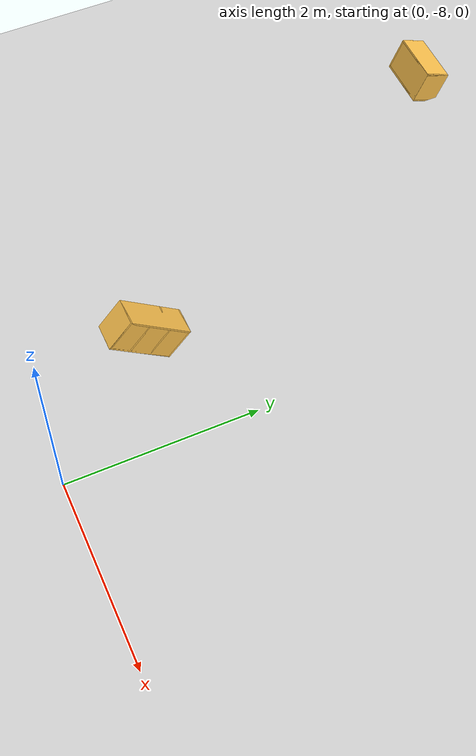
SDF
<sdf version="1.6">
 <world name="default">
  <model name="ground_plane">
   <static>1</static>
   <link name="link">
    <collision name="collision">
     <geometry><plane><normal>0 0 1</normal><size>100 100</size></plane></geometry>
     <surface><friction><ode><mu>100</mu><mu2>50</mu2></ode></friction></surface>
    </collision>
    <visual name="visual">
     <cast_shadows>0</cast_shadows>
     <geometry><plane><normal>0 0 1</normal><size>100 100</size></plane></geometry>
     <material>
      <script><uri>file://media/materials/scripts/gazebo.material</uri><name>Gazebo/Grey</name></script>
     </material>
    </visual>
   </link>
  </model>
  <model name="Wall_Cabinet_24x15M">
   <link name="Wall_41">
    <pose>0 0 0.01 0 -0 0</pose>
    <inertial>
     <mass>1.4983</mass>
     <inertia><ixx>0.011</ixx><iyy>0.0571</iyy><izz>0.0462</izz><ixy>0</ixy><ixz>0</ixz><iyz>0</iyz></inertia>
    </inertial>
    <collision name="Wall_41_Collision"><geometry><box><size>0.608 0.296 0.02</size></box></geometry></collision>
    <visual name="Wall_41_Visual">
     <geometry><box><size>0.608 0.296 0.02</size></box></geometry>
     <material>
      <script><uri>file://media/materials/scripts/gazebo.material</uri><name>Gazebo/Grey</name></script>
      <ambient>1 0.764706 0.305882 1</ambient>
     </material>
    </visual>
    <pose>0.000184 0.181953 0 0 -0 0</pose>
   </link>
   <joint name="41_43" type="fixed">
    <pose>-0.304 0 0 0 -0 0</pose>
    <parent>Wall_43</parent>
    <child>Wall_41</child>
    <axis>
     <xyz>0 0 1</xyz>
     <use_parent_model_frame>0</use_parent_model_frame>
     <limit><lower>-1e+16</lower><upper>1e+16</upper></limit>
    </axis>
   </joint>
   <joint name="41_45" type="fixed">
    <pose>0.304 0 0 0 -0 0</pose>
    <parent>Wall_45</parent>
    <child>Wall_41</child>
    <axis>
     <xyz>0 0 1</xyz>
     <use_parent_model_frame>0</use_parent_model_frame>
     <limit><lower>-1e+16</lower><upper>1e+16</upper></limit>
    </axis>
   </joint>
   <joint name="41_49" type="fixed">
    <pose>0 -0.148 0 0 -0 0</pose>
    <parent>Wall_49</parent>
    <child>Wall_41</child>
    <axis>
     <xyz>0 0 1</xyz>
     <use_parent_model_frame>0</use_parent_model_frame>
     <limit><lower>-1e+16</lower><upper>1e+16</upper></limit>
    </axis>
   </joint>
   <link name="Wall_43">
    <pose>-0.294 0 0.192 0 -0 0</pose>
    <inertial>
     <mass>0.9463</mass>
     <inertia><ixx>0.0069</ixx><iyy>0.0185</iyy><izz>0.0117</izz><ixy>0</ixy><ixz>0</ixz><iyz>0</iyz></inertia>
    </inertial>
    <collision name="Wall_43_Collision"><geometry><box><size>0.02 0.296 0.384</size></box></geometry></collision>
    <visual name="Wall_43_Visual">
     <geometry><box><size>0.02 0.296 0.384</size></box></geometry>
     <material>
      <script><uri>file://media/materials/scripts/gazebo.material</uri><name>Gazebo/Grey</name></script>
      <ambient>1 0.764706 0.305882 1</ambient>
     </material>
    </visual>
   </link>
   <link name="Wall_45">
    <pose>0.294 0 0.192 0 -0 0</pose>
    <inertial>
     <mass>0.9463</mass>
     <inertia><ixx>0.0069</ixx><iyy>0.0185</iyy><izz>0.0117</izz><ixy>0</ixy><ixz>0</ixz><iyz>0</iyz></inertia>
    </inertial>
    <collision name="Wall_45_Collision"><geometry><box><size>0.02 0.296 0.384</size></box></geometry></collision>
    <visual name="Wall_45_Visual">
     <geometry><box><size>0.02 0.296 0.384</size></box></geometry>
     <material>
      <script><uri>file://media/materials/scripts/gazebo.material</uri><name>Gazebo/Grey</name></script>
      <ambient>1 0.764706 0.305882 1</ambient>
     </material>
    </visual>
   </link>
   <link name="Wall_47">
    <pose>0 0 0.374 0 -0 0</pose>
    <inertial>
     <mass>1.4983</mass>
     <inertia><ixx>0.011</ixx><iyy>0.0571</iyy><izz>0.0462</izz><ixy>0</ixy><ixz>0</ixz><iyz>0</iyz></inertia>
    </inertial>
    <collision name="Wall_47_Collision"><geometry><box><size>0.608 0.296 0.02</size></box></geometry></collision>
    <visual name="Wall_47_Visual">
     <geometry><box><size>0.608 0.296 0.02</size></box></geometry>
     <material>
      <script><uri>file://media/materials/scripts/gazebo.material</uri><name>Gazebo/Grey</name></script>
      <ambient>1 0.764706 0.305882 1</ambient>
     </material>
    </visual>
   </link>
   <joint name="47_43" type="fixed">
    <pose>-0.304 0 0 0 -0 0</pose>
    <parent>Wall_43</parent>
    <child>Wall_47</child>
    <axis>
     <xyz>0 0 1</xyz>
     <use_parent_model_frame>0</use_parent_model_frame>
     <limit><lower>-1e+16</lower><upper>1e+16</upper></limit>
    </axis>
   </joint>
   <joint name="47_45" type="fixed">
    <pose>0.304 0 0 0 -0 0</pose>
    <parent>Wall_45</parent>
    <child>Wall_47</child>
    <axis>
     <xyz>0 0 1</xyz>
     <use_parent_model_frame>0</use_parent_model_frame>
     <limit><lower>-1e+16</lower><upper>1e+16</upper></limit>
    </axis>
   </joint>
   <joint name="47_49" type="fixed">
    <pose>0 -0.148 0 0 -0 0</pose>
    <parent>Wall_49</parent>
    <child>Wall_47</child>
    <axis>
     <xyz>0 0 1</xyz>
     <use_parent_model_frame>0</use_parent_model_frame>
     <limit><lower>-1e+16</lower><upper>1e+16</upper></limit>
    </axis>
   </joint>
   <link name="Wall_49">
    <pose>0 -0.138 0.19 0 -0 0</pose>
    <inertial>
     <mass>1.9108</mass>
     <inertia><ixx>0.0231</ixx><iyy>0.0582</iyy><izz>0.0811</izz><ixy>0</ixy><ixz>0</ixz><iyz>0</iyz></inertia>
    </inertial>
    <collision name="Wall_49_Collision"><geometry><box><size>0.604 0.02 0.38</size></box></geometry></collision>
    <visual name="Wall_49_Visual">
     <geometry><box><size>0.604 0.02 0.38</size></box></geometry>
     <material>
      <script><uri>file://media/materials/scripts/gazebo.material</uri><name>Gazebo/Grey</name></script>
      <ambient>1 0.764706 0.305882 1</ambient>
     </material>
    </visual>
   </link>
   <joint name="49_43" type="fixed">
    <pose>-0.302 0 0 0 -0 0</pose>
    <parent>Wall_41</parent>
    <child>Wall_49</child>
    <axis>
     <xyz>0 1 0</xyz>
     <use_parent_model_frame>0</use_parent_model_frame>
     <limit><lower>-1e+16</lower><upper>1e+16</upper></limit>
    </axis>
   </joint>
   <joint name="49_45" type="fixed">
    <pose>0.302 0 0 0 -0 0</pose>
    <parent>Wall_45</parent>
    <child>Wall_49</child>
    <axis>
     <xyz>0 1 0</xyz>
     <use_parent_model_frame>0</use_parent_model_frame>
     <limit><lower>-1e+16</lower><upper>1e+16</upper></limit>
    </axis>
   </joint>
   <static>1</static>
   <pose>-3.30759 -2.60525 0 -0.417028 0 0</pose>
  </model>
  <model name="Wall_Cabinet_15x30_1">
   <pose>-1.0711 -6.85196 0.260684 -0.696878 0 0</pose>
   <link name="Wall_0">
    <pose>0 0.374 0.192 0 -0 0</pose>
    <inertial>
     <mass>0.9882</mass>
     <inertia><ixx>0.0072</ixx><iyy>0.0194</iyy><izz>0.0122</izz><ixy>0</ixy><ixz>0</ixz><iyz>0</iyz></inertia>
    </inertial>
    <collision name="Wall_0_Collision"><geometry><box><size>0.296 0.02 0.384</size></box></geometry></collision>
    <visual name="Wall_0_Visual">
     <geometry><box><size>0.296 0.02 0.384</size></box></geometry>
     <material>
      <script><uri>file://media/materials/scripts/gazebo.material</uri><name>Gazebo/Grey</name></script>
      <ambient>1 0.764706 0.305882 1</ambient>
     </material>
    </visual>
   </link>
   <joint name="0_2" type="fixed">
    <pose>0 0 0.192 0 -0 0</pose>
    <parent>Wall_2</parent>
    <child>Wall_0</child>
    <axis>
     <xyz>0 0 1</xyz>
     <use_parent_model_frame>0</use_parent_model_frame>
     <limit><lower>-1e+16</lower><upper>1e+16</upper></limit>
    </axis>
   </joint>
   <joint name="0_4" type="fixed">
    <pose>0 0 -0.192 0 -0 0</pose>
    <parent>Wall_4</parent>
    <child>Wall_0</child>
    <axis>
     <xyz>0 0 1</xyz>
     <use_parent_model_frame>0</use_parent_model_frame>
     <limit><lower>-1e+16</lower><upper>1e+16</upper></limit>
    </axis>
   </joint>
   <joint name="0_15" type="fixed">
    <pose>0.148 0 0 0 -0 0</pose>
    <parent>Wall_15</parent>
    <child>Wall_0</child>
    <axis>
     <xyz>1 0 0</xyz>
     <use_parent_model_frame>0</use_parent_model_frame>
     <limit><lower>-1e+16</lower><upper>1e+16</upper></limit>
    </axis>
   </joint>
   <link name="Wall_11">
    <pose>0 -0.132768 0.192 0 -0 0</pose>
    <inertial>
     <mass>0.9882</mass>
     <inertia><ixx>0.0072</ixx><iyy>0.0194</iyy><izz>0.0122</izz><ixy>0</ixy><ixz>0</ixz><iyz>0</iyz></inertia>
    </inertial>
    <collision name="Wall_11_Collision"><geometry><box><size>0.296 0.02 0.384</size></box></geometry></collision>
    <visual name="Wall_11_Visual">
     <geometry><box><size>0.296 0.02 0.384</size></box></geometry>
     <material>
      <script><uri>file://media/materials/scripts/gazebo.material</uri><name>Gazebo/Grey</name></script>
      <ambient>1 0.764706 0.305882 1</ambient>
     </material>
    </visual>
   </link>
   <joint name="11_2" type="fixed">
    <pose>0 0 0.192 0 -0 0</pose>
    <parent>Wall_2</parent>
    <child>Wall_11</child>
    <axis>
     <xyz>0 0 1</xyz>
     <use_parent_model_frame>0</use_parent_model_frame>
     <limit><lower>-1e+16</lower><upper>1e+16</upper></limit>
    </axis>
   </joint>
   <joint name="11_4" type="fixed">
    <pose>0 0 -0.192 0 -0 0</pose>
    <parent>Wall_4</parent>
    <child>Wall_11</child>
    <axis>
     <xyz>0 0 1</xyz>
     <use_parent_model_frame>0</use_parent_model_frame>
     <limit><lower>-1e+16</lower><upper>1e+16</upper></limit>
    </axis>
   </joint>
   <joint name="11_15" type="fixed">
    <pose>0.148 0 0 0 -0 0</pose>
    <parent>Wall_15</parent>
    <child>Wall_11</child>
    <axis>
     <xyz>1 0 0</xyz>
     <use_parent_model_frame>0</use_parent_model_frame>
     <limit><lower>-1e+16</lower><upper>1e+16</upper></limit>
    </axis>
   </joint>
   <link name="Wall_15">
    <pose>0.138 0 0.19 0 -0 0</pose>
    <inertial>
     <mass>2.5241</mass>
     <inertia><ixx>0.0305</ixx><iyy>0.1229</iyy><izz>0.1532</izz><ixy>0</ixy><ixz>0</ixz><iyz>0</iyz></inertia>
    </inertial>
    <collision name="Wall_15_Collision"><geometry><box><size>0.02 0.764 0.38</size></box></geometry></collision>
    <visual name="Wall_15_Visual">
     <geometry><box><size>0.02 0.764 0.38</size></box></geometry>
     <material>
      <script><uri>file://media/materials/scripts/gazebo.material</uri><name>Gazebo/Grey</name></script>
      <ambient>1 0.764706 0.305882 1</ambient>
     </material>
    </visual>
   </link>
   <joint name="15_2" type="fixed">
    <pose>0 0 0.19 0 -0 0</pose>
    <parent>Wall_2</parent>
    <child>Wall_15</child>
    <axis>
     <xyz>0 0 1</xyz>
     <use_parent_model_frame>0</use_parent_model_frame>
     <limit><lower>-1e+16</lower><upper>1e+16</upper></limit>
    </axis>
   </joint>
   <joint name="15_4" type="fixed">
    <pose>0 0 -0.19 0 -0 0</pose>
    <parent>Wall_4</parent>
    <child>Wall_15</child>
    <axis>
     <xyz>0 0 1</xyz>
     <use_parent_model_frame>0</use_parent_model_frame>
     <limit><lower>-1e+16</lower><upper>1e+16</upper></limit>
    </axis>
   </joint>
   <link name="Wall_2">
    <pose>0 0 0.374 0 -0 0</pose>
    <inertial>
     <mass>1.9765</mass>
     <inertia><ixx>0.0145</ixx><iyy>0.1116</iyy><izz>0.0972</izz><ixy>0</ixy><ixz>0</ixz><iyz>0</iyz></inertia>
    </inertial>
    <collision name="Wall_2_Collision"><geometry><box><size>0.296 0.768 0.02</size></box></geometry></collision>
    <visual name="Wall_2_Visual">
     <geometry><box><size>0.296 0.768 0.02</size></box></geometry>
     <material>
      <script><uri>file://media/materials/scripts/gazebo.material</uri><name>Gazebo/Grey</name></script>
      <ambient>1 0.764706 0.305882 1</ambient>
     </material>
    </visual>
   </link>
   <link name="Wall_4">
    <pose>0 0 0.01 0 -0 0</pose>
    <inertial>
     <mass>1.9765</mass>
     <inertia><ixx>0.0145</ixx><iyy>0.1116</iyy><izz>0.0972</izz><ixy>0</ixy><ixz>0</ixz><iyz>0</iyz></inertia>
    </inertial>
    <collision name="Wall_4_Collision"><geometry><box><size>0.296 0.768 0.02</size></box></geometry></collision>
    <visual name="Wall_4_Visual">
     <geometry><box><size>0.296 0.768 0.02</size></box></geometry>
     <material>
      <script><uri>file://media/materials/scripts/gazebo.material</uri><name>Gazebo/Grey</name></script>
      <ambient>1 0.764706 0.305882 1</ambient>
     </material>
    </visual>
    <pose>-0.181124 0 0 0 0 -1.5708</pose>
   </link>
   <link name="Wall_6">
    <pose>0 -0.374 0.192 0 -0 0</pose>
    <inertial>
     <mass>0.9882</mass>
     <inertia><ixx>0.0072</ixx><iyy>0.0194</iyy><izz>0.0122</izz><ixy>0</ixy><ixz>0</ixz><iyz>0</iyz></inertia>
    </inertial>
    <collision name="Wall_6_Collision"><geometry><box><size>0.296 0.02 0.384</size></box></geometry></collision>
    <visual name="Wall_6_Visual">
     <geometry><box><size>0.296 0.02 0.384</size></box></geometry>
     <material>
      <script><uri>file://media/materials/scripts/gazebo.material</uri><name>Gazebo/Grey</name></script>
      <ambient>1 0.764706 0.305882 1</ambient>
     </material>
    </visual>
   </link>
   <joint name="6_2" type="fixed">
    <pose>0 0 0.192 0 -0 0</pose>
    <parent>Wall_2</parent>
    <child>Wall_6</child>
    <axis>
     <xyz>0 0 1</xyz>
     <use_parent_model_frame>0</use_parent_model_frame>
     <limit><lower>-1e+16</lower><upper>1e+16</upper></limit>
    </axis>
   </joint>
   <joint name="6_4" type="fixed">
    <pose>0 0 -0.192 0 -0 0</pose>
    <parent>Wall_4</parent>
    <child>Wall_6</child>
    <axis>
     <xyz>0 0 1</xyz>
     <use_parent_model_frame>0</use_parent_model_frame>
     <limit><lower>-1e+16</lower><upper>1e+16</upper></limit>
    </axis>
   </joint>
   <joint name="6_15" type="fixed">
    <pose>0.148 0 0 0 -0 0</pose>
    <parent>Wall_15</parent>
    <child>Wall_6</child>
    <axis>
     <xyz>1 0 0</xyz>
     <use_parent_model_frame>0</use_parent_model_frame>
     <limit><lower>-1e+16</lower><upper>1e+16</upper></limit>
    </axis>
   </joint>
   <link name="Wall_8">
    <pose>0 0.120833 0.192 0 -0 0</pose>
    <inertial>
     <mass>0.9882</mass>
     <inertia><ixx>0.0072</ixx><iyy>0.0194</iyy><izz>0.0122</izz><ixy>0</ixy><ixz>0</ixz><iyz>0</iyz></inertia>
    </inertial>
    <collision name="Wall_8_Collision"><geometry><box><size>0.296 0.02 0.384</size></box></geometry></collision>
    <visual name="Wall_8_Visual">
     <geometry><box><size>0.296 0.02 0.384</size></box></geometry>
     <material>
      <script><uri>file://media/materials/scripts/gazebo.material</uri><name>Gazebo/Grey</name></script>
      <ambient>1 0.764706 0.305882 1</ambient>
     </material>
    </visual>
   </link>
   <joint name="8_2" type="fixed">
    <pose>0 0 0.192 0 -0 0</pose>
    <parent>Wall_2</parent>
    <child>Wall_8</child>
    <axis>
     <xyz>0 0 1</xyz>
     <use_parent_model_frame>0</use_parent_model_frame>
     <limit><lower>-1e+16</lower><upper>1e+16</upper></limit>
    </axis>
   </joint>
   <joint name="8_4" type="fixed">
    <pose>0 0 -0.192 0 -0 0</pose>
    <parent>Wall_4</parent>
    <child>Wall_8</child>
    <axis>
     <xyz>0 0 1</xyz>
     <use_parent_model_frame>0</use_parent_model_frame>
     <limit><lower>-1e+16</lower><upper>1e+16</upper></limit>
    </axis>
   </joint>
   <joint name="8_15" type="fixed">
    <pose>0.148 0 0 0 -0 0</pose>
    <parent>Wall_15</parent>
    <child>Wall_8</child>
    <axis>
     <xyz>1 0 0</xyz>
     <use_parent_model_frame>0</use_parent_model_frame>
     <limit><lower>-1e+16</lower><upper>1e+16</upper></limit>
    </axis>
   </joint>
   <static>1</static>
  </model>
 </world>
</sdf>
